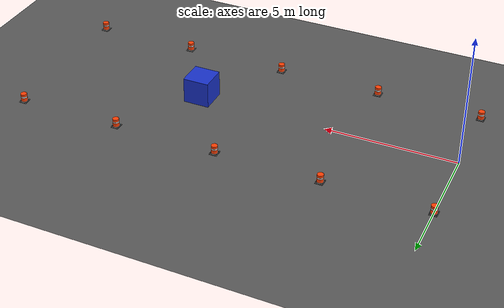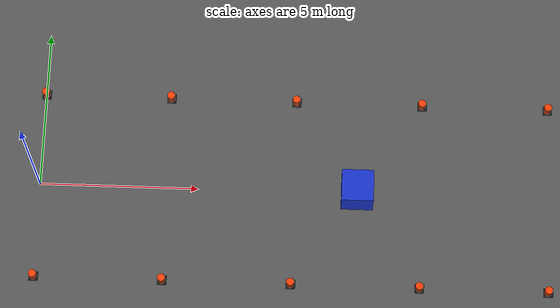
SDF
<?xml version="1.0"?>
<sdf version="1.9">
  <world name="flat_cones">
    <physics name="default_physics" type="ignored">
      <max_step_size>0.001</max_step_size>
      <real_time_factor>1.0</real_time_factor>
    </physics>

    <plugin
      filename="gz-sim-physics-system"
      name="gz::sim::systems::Physics">
    </plugin>

    <plugin
      filename="gz-sim-user-commands-system"
      name="gz::sim::systems::UserCommands">
    </plugin>

    <plugin
      filename="gz-sim-scene-broadcaster-system"
      name="gz::sim::systems::SceneBroadcaster">
    </plugin>

    <plugin
      filename="gz-sim-sensors-system"
      name="gz::sim::systems::Sensors">
      <render_engine>ogre2</render_engine>
    </plugin>

    <gui fullscreen="false">
      <plugin name="3D View" filename="GzScene3D">
        <gz-gui>
          <title>3D View</title>
          <property type="bool" key="showTitleBar">false</property>
          <property type="string" key="state">docked</property>
        </gz-gui>
        <engine>ogre2</engine>
        <scene>scene</scene>
        <!-- Start close to the racecar at the world origin. -->
        <camera_pose>-5 -5 4 0 0.45 0.7</camera_pose>
      </plugin>

      <plugin name="World control" filename="WorldControl">
        <gz-gui>
          <title>World control</title>
          <property type="bool" key="showTitleBar">false</property>
          <property type="bool" key="resizable">false</property>
          <property type="double" key="height">72</property>
          <property type="double" key="width">121</property>
          <property type="double" key="z">1</property>
          <property type="string" key="state">floating</property>
          <anchors target="3D View">
            <line own="left" target="left"/>
            <line own="bottom" target="bottom"/>
          </anchors>
        </gz-gui>
        <play_pause>true</play_pause>
        <step>true</step>
        <start_paused>false</start_paused>
      </plugin>

      <plugin name="World stats" filename="WorldStats">
        <gz-gui>
          <title>World stats</title>
          <property type="bool" key="showTitleBar">false</property>
          <property type="bool" key="resizable">false</property>
          <property type="double" key="height">110</property>
          <property type="double" key="width">290</property>
          <property type="double" key="z">1</property>
          <property type="string" key="state">floating</property>
          <anchors target="3D View">
            <line own="right" target="right"/>
            <line own="bottom" target="bottom"/>
          </anchors>
        </gz-gui>
        <sim_time>true</sim_time>
        <real_time>true</real_time>
        <real_time_factor>true</real_time_factor>
        <iterations>true</iterations>
      </plugin>

      <plugin name="Entity tree" filename="EntityTree"/>
    </gui>

    <scene>
      <ambient>0.6 0.6 0.6 1</ambient>
      <background>0.75 0.85 0.95 1</background>
      <shadows>true</shadows>
    </scene>

    <light type="directional" name="sun">
      <pose>0 0 10 0 0 0</pose>
      <cast_shadows>true</cast_shadows>
      <diffuse>0.9 0.9 0.9 1</diffuse>
      <specular>0.2 0.2 0.2 1</specular>
      <direction>-0.5 0.2 -0.9</direction>
    </light>

    <model name="ground_plane">
      <static>true</static>

      <link name="ground_link">
        <collision name="ground_collision">
          <geometry>
            <plane>
              <normal>0 0 1</normal>
              <size>100 100</size>
            </plane>
          </geometry>
        </collision>

        <visual name="ground_visual">
          <geometry>
            <plane>
              <normal>0 0 1</normal>
              <size>100 100</size>
            </plane>
          </geometry>
          <material>
            <ambient>0.25 0.25 0.25 1</ambient>
            <diffuse>0.35 0.35 0.35 1</diffuse>
          </material>
        </visual>
      </link>
    </model>

    <model name="test_box">
      <static>true</static>
      <pose>10 0 0.50 0 0 0</pose>

      <link name="box_link">
        <collision name="box_collision">
          <geometry>
            <box>
              <size>1.0 1.0 1.0</size>
            </box>
          </geometry>
        </collision>

        <visual name="box_visual">
          <geometry>
            <box>
              <size>1.0 1.0 1.0</size>
            </box>
          </geometry>
          <material>
            <ambient>0.1 0.2 0.8 1</ambient>
            <diffuse>0.1 0.2 0.8 1</diffuse>
          </material>
        </visual>
      </link>
    </model>

    <include>
      <uri>model://track_cone</uri>
      <name>left_cone_01</name>
      <pose>0 3 0 0 0 0</pose>
    </include>

    <include>
      <uri>model://track_cone</uri>
      <name>left_cone_02</name>
      <pose>4 3 0 0 0 0</pose>
    </include>

    <include>
      <uri>model://track_cone</uri>
      <name>left_cone_03</name>
      <pose>8 3 0 0 0 0</pose>
    </include>

    <include>
      <uri>model://track_cone</uri>
      <name>left_cone_04</name>
      <pose>12 3 0 0 0 0</pose>
    </include>

    <include>
      <uri>model://track_cone</uri>
      <name>left_cone_05</name>
      <pose>16 3 0 0 0 0</pose>
    </include>

    <include>
      <uri>model://track_cone</uri>
      <name>right_cone_01</name>
      <pose>0 -3 0 0 0 0</pose>
    </include>

    <include>
      <uri>model://track_cone</uri>
      <name>right_cone_02</name>
      <pose>4 -3 0 0 0 0</pose>
    </include>

    <include>
      <uri>model://track_cone</uri>
      <name>right_cone_03</name>
      <pose>8 -3 0 0 0 0</pose>
    </include>

    <include>
      <uri>model://track_cone</uri>
      <name>right_cone_04</name>
      <pose>12 -3 0 0 0 0</pose>
    </include>

    <include>
      <uri>model://track_cone</uri>
      <name>right_cone_05</name>
      <pose>16 -3 0 0 0 0</pose>
    </include>
  </world>
</sdf>

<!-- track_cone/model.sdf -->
<sdf version="1.9">
  <model name="track_cone">
    <static>true</static>

    <link name="cone_link">
      <collision name="base_collision">
        <pose>0 0 0.02 0 0 0</pose>
        <geometry>
          <box>
            <size>0.30 0.30 0.04</size>
          </box>
        </geometry>
      </collision>

      <collision name="body_collision">
        <pose>0 0 0.18 0 0 0</pose>
        <geometry>
          <cylinder>
            <radius>0.12</radius>
            <length>0.32</length>
          </cylinder>
        </geometry>
      </collision>

      <visual name="base_visual">
        <pose>0 0 0.02 0 0 0</pose>
        <geometry>
          <box>
            <size>0.30 0.30 0.04</size>
          </box>
        </geometry>
        <material>
          <ambient>0.05 0.05 0.05 1</ambient>
          <diffuse>0.05 0.05 0.05 1</diffuse>
        </material>
      </visual>

      <visual name="body_visual">
        <pose>0 0 0.18 0 0 0</pose>
        <geometry>
          <cylinder>
            <radius>0.12</radius>
            <length>0.32</length>
          </cylinder>
        </geometry>
        <material>
          <ambient>1.0 0.25 0.02 1</ambient>
          <diffuse>1.0 0.25 0.02 1</diffuse>
        </material>
      </visual>

      <visual name="white_band_visual">
        <pose>0 0 0.22 0 0 0</pose>
        <geometry>
          <cylinder>
            <radius>0.121</radius>
            <length>0.06</length>
          </cylinder>
        </geometry>
        <material>
          <ambient>0.95 0.95 0.95 1</ambient>
          <diffuse>0.95 0.95 0.95 1</diffuse>
        </material>
      </visual>
    </link>
  </model>
</sdf>
